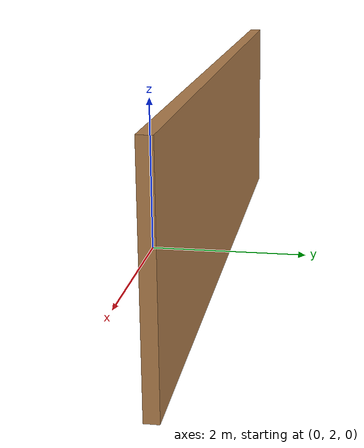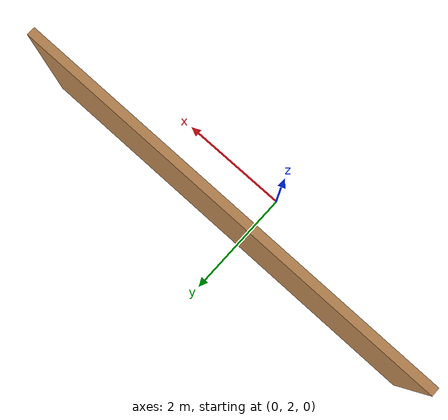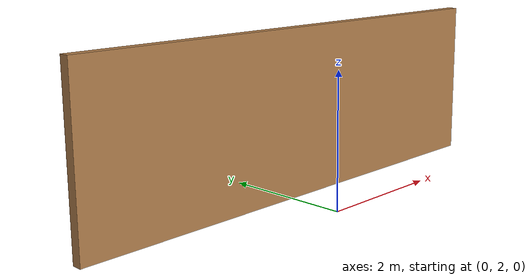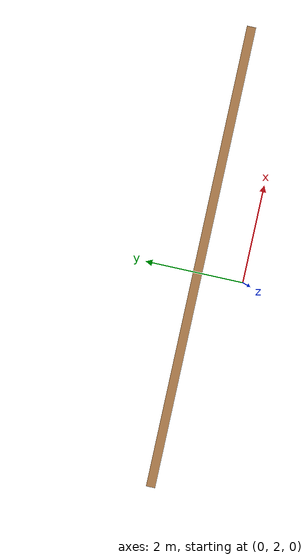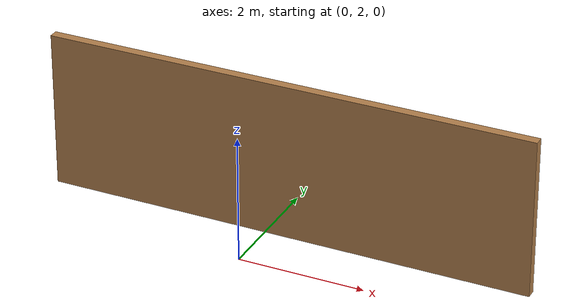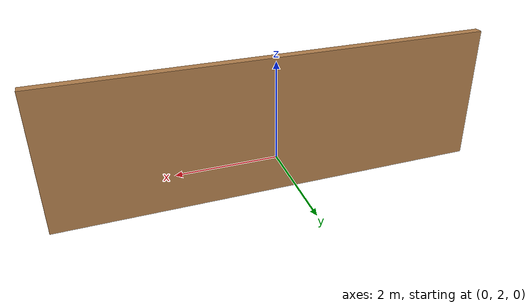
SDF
<?xml version='1.0'?>
<sdf version='1.7'>
  <model name='OneWallWorld'>
    <pose>0.325805 1.51015 0 0 -0 0</pose>
    <link name='Wall_0'>
      <collision name='Wall_0_Collision'>
        <geometry>
          <box>
            <size>7.75 0.15 2.5</size>
          </box>
        </geometry>
        <pose>0 0 1.25 0 -0 0</pose>
      </collision>
      <visual name='Wall_0_Visual'>
        <pose>0 0 1.25 0 -0 0</pose>
        <geometry>
          <box>
            <size>7.75 0.15 2.5</size>
          </box>
        </geometry>
        <material>
          <script>
            <uri>file://media/materials/scripts/gazebo.material</uri>
            <name>Gazebo/Wood</name>
          </script>
          <ambient>1 1 1 1</ambient>
        </material>
        <meta>
          <layer>0</layer>
        </meta>
      </visual>
      <pose>-0 1.43515 0 0 -0 3.14159</pose>
    </link>
    <static>1</static>
  </model>
</sdf>
